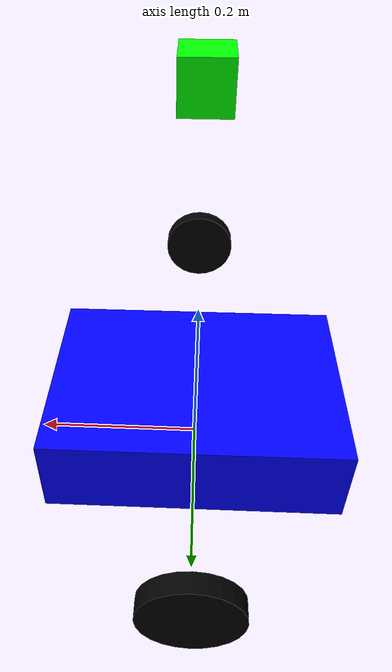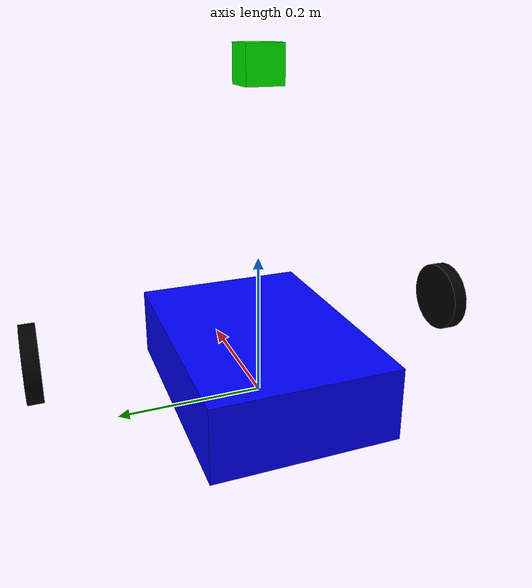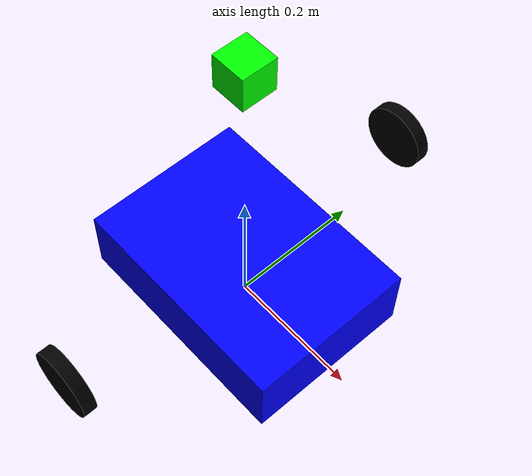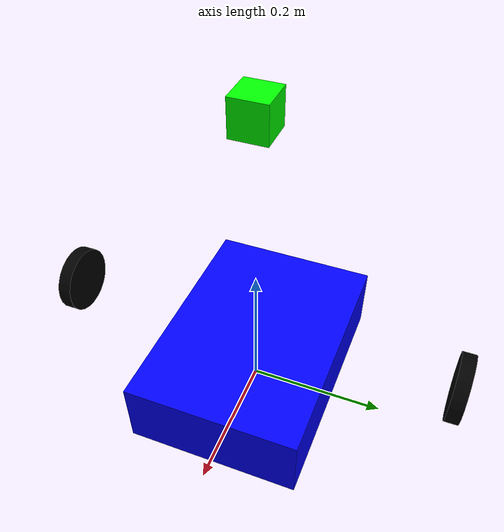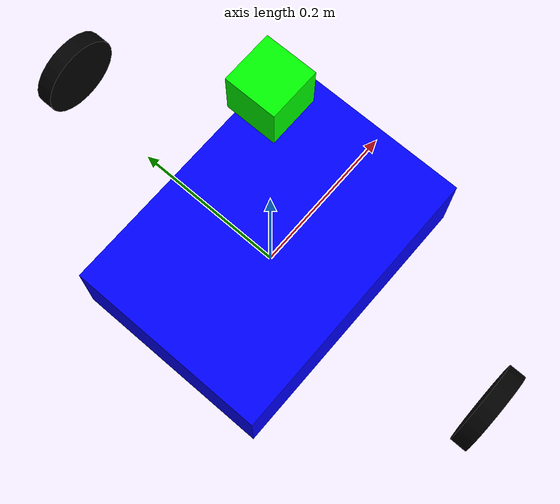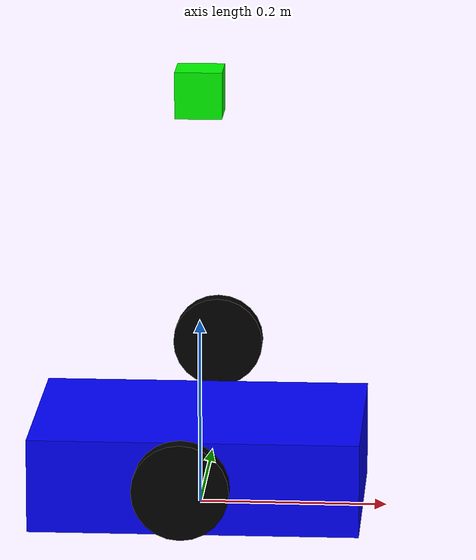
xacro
<?xml version="1.0"?>
<robot name="arduinobot" xmlns:xacro="http://ros.org/wiki/xacro">

  <!-- Parameters -->
  <xacro:property name="wheel_radius" value="0.05"/>
  <xacro:property name="wheel_width" value="0.02"/>
  <xacro:property name="wheel_distance" value="0.30"/>
  <xacro:property name="body_length" value="0.35"/>
  <xacro:property name="body_width" value="0.25"/>
  <xacro:property name="body_height" value="0.10"/>
  <xacro:property name="camera_height" value="0.25"/>
  <xacro:property name="camera_size" value="0.05"/>

  <!-- Base Link -->
  <link name="base_link">
    <visual>
      <geometry>
        <box size="${body_length} ${body_width} ${body_height}"/>
      </geometry>
      <origin xyz="0 0 ${body_height / 2}" rpy="0 0 0"/>
      <material name="blue">
        <color rgba="0 0 1 1"/>
      </material>
    </visual>
    <collision>
      <geometry>
        <box size="${body_length} ${body_width} ${body_height}"/>
      </geometry>
      <origin xyz="0 0 ${body_height / 2}" rpy="0 0 0"/>
    </collision>
    <inertial>
      <mass value="2.0"/>
      <origin xyz="0 0 ${body_height / 2}"/>
      <inertia ixx="0.01" ixy="0" ixz="0" iyy="0.01" iyz="0" izz="0.02"/>
    </inertial>
  </link>

  <!-- Left Wheel -->
  <link name="left_wheel">
    <visual>
      <geometry>
        <cylinder radius="${wheel_radius}" length="${wheel_width}"/>
      </geometry>
      <origin xyz="0 ${wheel_distance / 2} ${wheel_radius}" rpy="1.5708 0 0"/>
      <material name="black">
        <color rgba="0 0 0 1"/>
      </material>
    </visual>
  </link>

  <!-- Right Wheel -->
  <link name="right_wheel">
    <visual>
      <geometry>
        <cylinder radius="${wheel_radius}" length="${wheel_width}"/>
      </geometry>
      <origin xyz="0 -${wheel_distance / 2} ${wheel_radius}" rpy="1.5708 0 0"/>
      <material name="black">
        <color rgba="0 0 0 1"/>
      </material>
    </visual>
  </link>

  <!-- Camera (Phone Eye) -->
  <link name="phone_eye">
    <visual>
      <geometry>
        <box size="${camera_size} ${camera_size} ${camera_size}"/>
      </geometry>
      <origin xyz="0 0 ${body_height + camera_height}" rpy="0 0 0"/>
      <material name="green">
        <color rgba="0 1 0 1"/>
      </material>
    </visual>
  </link>

  <!-- Joints -->
  <joint name="left_wheel_joint" type="continuous">
    <parent link="base_link"/>
    <child link="left_wheel"/>
    <origin xyz="0 ${wheel_distance / 2} ${wheel_radius}" rpy="0 0 0"/>
    <axis xyz="0 1 0"/>
  </joint>

  <joint name="right_wheel_joint" type="continuous">
    <parent link="base_link"/>
    <child link="right_wheel"/>
    <origin xyz="0 -${wheel_distance / 2} ${wheel_radius}" rpy="0 0 0"/>
    <axis xyz="0 1 0"/>
  </joint>

  <joint name="phone_mount" type="fixed">
    <parent link="base_link"/>
    <child link="phone_eye"/>
    <origin xyz="0 0 ${body_height}" rpy="0 0 0"/>
  </joint>

</robot>
